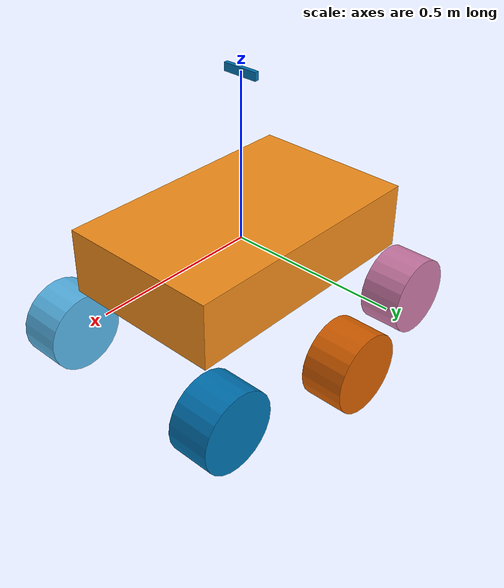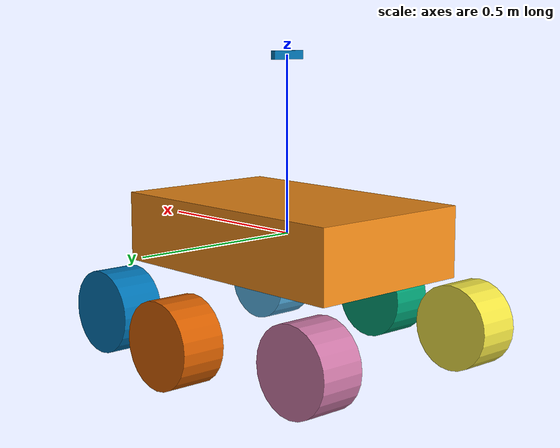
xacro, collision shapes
<?xml version="1.0"?>
<robot xmlns:xacro="http://www.ros.org/wiki/xacro" name="rover">

  <xacro:include filename="$(find protobot_description)/urdf/macro.xacro"/>

  <link name="base_link">
    <visual>
      <geometry>
        <box size="${body_length} ${body_width} ${body_height}"/>
      </geometry>
    </visual>
    <collision>
      <geometry>
        <box size="${body_length} ${body_width} ${body_height}"/>
      </geometry>
    </collision>
    <inertial>
      <origin xyz="0 0 0" rpy="0 0 0"/>
      <mass value="${body_mass}"/>
      <xacro:box_inertia m="${body_mass}" x="${body_length}" y="${body_width}" z="${body_height}"/>
    </inertial>
  </link>

  <link name="right_front_wheel"><xacro:wheel_visual_collision_inertia/></link>

  <joint name="right_front_wheel_pivot" type="continuous">
    <hardwareInterface>hardware_interface/VelocityJointInterface</hardwareInterface>
    <parent link="base_link"/>
    <child link="right_front_wheel"/>
    <origin xyz="${front_wheel_forward} -${front_wheel_out} -${wheel_height}"/>
    <axis xyz="0 1 0" />
  </joint>

  <link name="right_mid_wheel"><xacro:wheel_visual_collision_inertia/></link>

  <joint name="right_mid_wheel_pivot" type="continuous">
    <hardwareInterface>hardware_interface/VelocityJointInterface</hardwareInterface>
    <parent link="base_link"/>
    <child link="right_mid_wheel"/>
    <origin xyz="0 -${mid_wheel_out} -${wheel_height}"/>
    <axis xyz="0 1 0" />
  </joint>

  <link name="right_back_wheel"><xacro:wheel_visual_collision_inertia/></link>

  <joint name="right_back_wheel_pivot" type="continuous">
    <hardwareInterface>hardware_interface/VelocityJointInterface</hardwareInterface>
    <parent link="base_link"/>
    <child link="right_back_wheel"/>
    <origin xyz="-${rear_wheel_back} -${rear_wheel_out} -${wheel_height}"/>
    <axis xyz="0 1 0" />
  </joint>

  <link name="left_front_wheel"><xacro:wheel_visual_collision_inertia/></link>

  <joint name="left_front_wheel_pivot" type="continuous">
    <parent link="base_link"/>
    <child link="left_front_wheel"/>
    <origin xyz="${front_wheel_forward} ${front_wheel_out} -${wheel_height}"/>
    <axis xyz="0 1 0" />
  </joint>

  <link name="left_mid_wheel"><xacro:wheel_visual_collision_inertia/></link>

  <joint name="left_mid_wheel_pivot" type="continuous">
    <hardwareInterface>hardware_interface/VelocityJointInterface</hardwareInterface>
    <parent link="base_link"/>
    <child link="left_mid_wheel"/>
    <origin xyz="0 ${mid_wheel_out} -${wheel_height}"/>
    <axis xyz="0 1 0" />
  </joint>

  <link name="left_back_wheel"><xacro:wheel_visual_collision_inertia/></link>

  <joint name="left_back_wheel_pivot" type="continuous">
    <hardwareInterface>hardware_interface/VelocityJointInterface</hardwareInterface>
    <parent link="base_link"/>
    <child link="left_back_wheel"/>
    <origin xyz="-${rear_wheel_back} ${rear_wheel_out} -${wheel_height}"/>
    <axis xyz="0 1 0" />
  </joint>

  <gazebo reference="base_link">
    <material>Gazebo/Orange</material>
  </gazebo>

  <link name="gps_imu_link">
  </link>

  <link name="cam_link">
</link>

  <link name="cam_link_optical">
</link>

  <link name="gps"></link>

  <joint name="cam_optical_joint" type="fixed">
    <parent link="cam_link"/>
    <child link="cam_link_optical"/>
    <origin xyz="0 0 0" rpy="3.14 3.14 1.571"/>
</joint>

  <joint name="cam_joint" type="fixed">
    <parent link="base_link"/>
    <child link="cam_link"/>
    <origin xyz="0 0 0" rpy="0 0 0"/>
</joint>

  <joint name="ublox_gps_joint" type="fixed">
    <parent link="base_link"/>
    <child link="gps"/>
    <origin xyz="0 0 0.5"/>
</joint>

  <joint name="gps_imu_joint" type="fixed">
      <parent link="base_link"/>
      <child link="gps_imu_link"/>
      <origin xyz="0 0 0.5"/>
  </joint>

  <xacro:include filename="$(find realsense_ros_gazebo)/xacro/tracker.xacro"/>

  <xacro:realsense_T265 sensor_name="camera" parent_link="cam_link_optical" rate="30.0">
    <origin rpy="0 0 1.57" xyz="0 0 0.5"/>
  </xacro:realsense_T265>

  <xacro:include filename="$(find realsense_ros_gazebo)/xacro/depthcam.xacro"/>

  <xacro:realsense_d435 sensor_name="d435" parent_link="cam_link_optical" rate="10">
    <origin rpy="0 0 1.57" xyz="0 0 0.5"/>
  </xacro:realsense_d435>

  <gazebo>
    <plugin filename="libgazebo_ros_control.so" name="gazebo_ros_control">
    </plugin>
  </gazebo>

  <gazebo>
    <plugin name="gps_controller" filename="libhector_gazebo_ros_gps.so">
        <updateRate>30.0</updateRate>
        <bodyName>gps_imu_link</bodyName>
        <topicName>gps/fix</topicName>
        <frameId>gps_imu_link</frameId>
        <gaussianNoise>0</gaussianNoise>
    </plugin>
  </gazebo>

  <gazebo>
     <plugin name="imu_plugin" filename="libgazebo_ros_imu.so">
      <alwaysOn>true</alwaysOn>
      <bodyName>gps_imu_link</bodyName>
      <topicName>imu/data</topicName>
      <serviceName>imu_service</serviceName>
      <gaussianNoise>0</gaussianNoise>
      <updateRate>20.0</updateRate>
    </plugin>
  </gazebo>

  <gazebo reference="camera_link">
     <sensor type="depth" name="depth_camera">
      <plugin name="camera_link_controller" filename="libgazebo_ros_openni_kinect.so">
          <baseline>0.2</baseline>
          <alwaysOn>true</alwaysOn>
          <updateRate>1.0</updateRate>
          <cameraName>camera</cameraName>
          <imageTopicName>color/image_raw</imageTopicName>
      <cameraInfoTopicName>color/camera_info</cameraInfoTopicName>
      <depthImageTopicName>depth/image_raw</depthImageTopicName>
      <depthImageInfoTopicName>depth/camera_info</depthImageInfoTopicName>
      <pointCloudTopicName>depth/pointcloud</pointCloudTopicName>
          <frameName>cam_link_optical</frameName>
          <pointCloudCutoff>0.1</pointCloudCutoff>
      <pointCloudCutoffMax>5</pointCloudCutoffMax>
          <distortionK1>0.00000001</distortionK1>
          <distortionK2>0.00000001</distortionK2>
          <distortionK3>0.00000001</distortionK3>
          <distortionT1>0.00000001</distortionT1>
          <distortionT2>0.00000001</distortionT2>
          <CxPrime>0</CxPrime>
          <Cx>0</Cx>
          <Cy>0</Cy>
          <focalLength>0</focalLength>
          <hackBaseline>0</hackBaseline>
      </plugin>
     </sensor>
  </gazebo>

  <transmission name="left_front_trans">
    <type>transmission_interface/SimpleTransmission</type>
    <actuator name="motor1">
      <mechanicalReduction>1</mechanicalReduction>
    </actuator>
    <joint name="left_front_wheel_pivot">
      <hardwareInterface>hardware_interface/VelocityJointInterface</hardwareInterface>
    </joint>
  </transmission>

  <transmission name="left_middle_trans">
    <type>transmission_interface/SimpleTransmission</type>
    <actuator name="motor1">
      <mechanicalReduction>1</mechanicalReduction>
    </actuator>
    <joint name="left_mid_wheel_pivot">
      <hardwareInterface>hardware_interface/VelocityJointInterface</hardwareInterface>
    </joint>
  </transmission>

  <transmission name="left_back_trans">
    <type>transmission_interface/SimpleTransmission</type>
    <actuator name="motor1">
      <mechanicalReduction>1</mechanicalReduction>
    </actuator>
    <joint name="left_back_wheel_pivot">
      <hardwareInterface>hardware_interface/VelocityJointInterface</hardwareInterface>
    </joint>
  </transmission>

  <transmission name="right_front_trans">
    <type>transmission_interface/SimpleTransmission</type>
    <actuator name="motor1">
      <mechanicalReduction>1</mechanicalReduction>
    </actuator>
    <joint name="right_front_wheel_pivot">
      <hardwareInterface>hardware_interface/VelocityJointInterface</hardwareInterface>
    </joint>
  </transmission>

  <transmission name="right_middle_trans">
    <type>transmission_interface/SimpleTransmission</type>
    <actuator name="motor1">
      <mechanicalReduction>1</mechanicalReduction>
    </actuator>
    <joint name="right_mid_wheel_pivot">
      <hardwareInterface>hardware_interface/VelocityJointInterface</hardwareInterface>
    </joint>
  </transmission>

  <transmission name="right_back_trans">
    <type>transmission_interface/SimpleTransmission</type>
    <actuator name="motor1">
      <mechanicalReduction>1</mechanicalReduction>
    </actuator>
    <joint name="right_back_wheel_pivot">
      <hardwareInterface>hardware_interface/VelocityJointInterface</hardwareInterface>
    </joint>
  </transmission>

</robot>

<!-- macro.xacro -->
<robot xmlns:xacro="http://www.ros.org/wiki/xacro" name="macros">

<xacro:property name="body_length" value="0.8"/>
<xacro:property name="body_width" value="0.5"/>
<xacro:property name="body_height" value="0.2"/>
<xacro:property name="body_mass" value="55"/>

<xacro:property name="wheel_radius" value="0.12"/>
<xacro:property name="wheel_width" value="0.128"/>
<xacro:property name="wheel_height" value="0.24"/>
<xacro:property name="wheel_mass" value="0.7"/>

<xacro:property name="front_wheel_forward" value="0.4"/>
<xacro:property name="front_wheel_out" value="0.3"/>
<xacro:property name="mid_wheel_out" value="0.4"/>
<xacro:property name="rear_wheel_back" value="0.4"/>
<xacro:property name="rear_wheel_out" value="0.3"/>

<xacro:macro name="box_inertia" params="m x y z">
  <inertia  ixx="${m*(y*y+z*z)/12}" ixy = "0" ixz = "0"
            iyy="${m*(x*x+z*z)/12}" iyz = "0"
            izz="${m*(x*x+z*z)/12}"/>
</xacro:macro>

<xacro:macro name="cylinder_inertia" params="m r h">
  <inertia    ixx="${m*(3*r*r+h*h)/12}" ixy = "0" ixz = "0"
              iyy="${m*(3*r*r+h*h)/12}" iyz = "0"
              izz="${m*r*r/2}"/>
</xacro:macro>

<xacro:macro name="wheel_visual_collision_inertia">
  <visual>
    <geometry>
      <cylinder length="${wheel_width}" radius="${wheel_radius}"/>
    </geometry>
    <origin rpy="${pi/2} 0 0"/>
  </visual>
  <collision>
    <geometry>
      <cylinder length="${wheel_width}" radius="${wheel_radius}"/>
    </geometry>
    <origin rpy="${pi/2} 0 0"/>
  </collision>
  <inertial>
    <mass value="${wheel_mass}"/>
    <xacro:cylinder_inertia m="${wheel_mass}" r="${wheel_radius}" h="${wheel_height}"/>
  </inertial>
</xacro:macro>

</robot>

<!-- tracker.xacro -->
<robot xmlns:xacro="http://www.ros.org/wiki/xacro">

  <xacro:macro name="T265_fisheye" params="sensor_name reference_frame topic rate">
    <gazebo reference="${reference_frame}">
      <sensor name="camera" type="wideanglecamera">
        <camera>
          <horizontal_fov>6.283</horizontal_fov>
          <image>
            <width>800</width>
            <height>848</height>
          </image>
          <clip>
            <near>0.1</near>
            <far>100</far>
          </clip>
          <lens>
            <type>custom</type>
            <custom_function>
              <c1>1.05</c1>
              <c2>4</c2>
              <f>1.0</f>
              <fun>tan</fun>
            </custom_function>
            <scale_to_hfov>true</scale_to_hfov>
            <cutoff_angle>3.1415</cutoff_angle>
            <env_texture_size>512</env_texture_size>
          </lens>
          <always_on>true</always_on>
          <update_rate>30</update_rate>
        </camera>
        <plugin name="camera_controller" filename="libgazebo_ros_camera.so">
          <alwaysOn>true</alwaysOn>
          <updateRate>${rate}</updateRate>
          <cameraName>${sensor_name}/${topic}</cameraName>
          <imageTopicName>image_raw</imageTopicName>
          <cameraInfoTopicName>camera_info</cameraInfoTopicName>
          <frameName>${reference_frame}</frameName>
          <hackBaseline>0.07</hackBaseline>
          <distortionK1>-0.007419134024530649</distortionK1>
          <distortionK2>0.041209351271390915</distortionK2>
          <distortionK3>-0.03811917081475258</distortionK3>
          <distortionT1>0.006366158835589886</distortionT1>
          <distortionT2>0.0</distortionT2>
          <CxPrime>416.00531005859375</CxPrime>
          <Cx>16.00531005859375</Cx>
          <Cy>403.38909912109375</Cy>
        </plugin>
      </sensor>
    </gazebo>
  </xacro:macro>

  <!-- INTEL REALSENSE T265 -->

  <xacro:macro name="realsense_T265" params="sensor_name parent_link rate *origin">

    <joint name="${sensor_name}_odom_frame_joint" type="fixed">
        <parent link="${parent_link}"/>
        <child link="${sensor_name}_odom_frame"/>
        <xacro:insert_block name="origin"/>
    </joint>

    <joint name="${sensor_name}_pose_frame_joint" type="fixed">
        <parent link="${sensor_name}_odom_frame"/>
        <child link="${sensor_name}_pose_frame"/>
        <origin rpy="0 0 0" xyz="0 0 0"/> <!-- check on real hw -->
    </joint>
    <link name="${sensor_name}_odom_frame"/>

    <link name="${sensor_name}_pose_frame">
        <visual>
            <origin rpy="1.57 0 1.57" xyz="0 0 0"/>
            <geometry>
                <mesh filename="package://realsense_ros_gazebo/meshes/realsense_t265.stl" scale="0.001 0.001 0.001"/>
            </geometry>
        </visual>
        <collision>
            <geometry>
                <box size="0.013 0.108 0.024"/>
            </geometry>
        </collision>
        <inertial>
            <mass value="0.055"/>
            <origin rpy="0 0 0" xyz="0 0 0"/>
            <inertia ixx="9.108e-05"
                     ixy="0"
                     ixz="0"
                     iyy="2.51e-06"
                     iyz="0"
                     izz="8.931e-05"/>
        </inertial>
    </link>

    <joint name="${sensor_name}_joint" type="fixed">
        <parent link="${sensor_name}_pose_frame"/>
        <child link="${sensor_name}_link"/>
        <origin rpy="0 0 0" xyz="0 0 0"/> <!-- check on real hw -->
    </joint>
    <link name="${sensor_name}_link"/>

    <joint name="${sensor_name}_fisheye1_joint" type="fixed">
        <parent link="${sensor_name}_link"/>
        <child link="${sensor_name}_fisheye1_frame"/>
        <origin rpy="0 0 0" xyz="0 0.042 0"/>
    </joint>
    <link name="${sensor_name}_fisheye1_frame"/>

    <joint name="${sensor_name}_fisheye1_optical_joint" type="fixed">
        <parent link="${sensor_name}_fisheye1_frame"/>
        <child link="${sensor_name}_fisheye1_optical_frame"/>
        <origin rpy="0 0 0" xyz="0.01 0 0"/>
    </joint>
    <link name="${sensor_name}_fisheye1_optical_frame"/>
    <xacro:T265_fisheye
      sensor_name="${sensor_name}"
      reference_frame="${sensor_name}_fisheye1_optical_frame"
      topic="fisheye1"
      rate="${rate}">
    </xacro:T265_fisheye>

    <joint name="${sensor_name}_fisheye2_joint" type="fixed">
        <parent link="${sensor_name}_link"/>
        <child link="${sensor_name}_fisheye2_frame"/>
        <origin rpy="0 0 0" xyz="0 -0.022 0"/>
    </joint>
    <link name="${sensor_name}_fisheye2_frame"/>

    <joint name="${sensor_name}_fisheye2_optical_joint" type="fixed">
        <parent link="${sensor_name}_fisheye2_frame"/>
        <child link="${sensor_name}_fisheye2_optical_frame"/>
        <origin rpy="0 0 0" xyz="0.01 0 0"/>
    </joint>
    <link name="${sensor_name}_fisheye2_optical_frame"/>
    <xacro:T265_fisheye
      sensor_name="${sensor_name}"
      reference_frame="${sensor_name}_fisheye2_optical_frame"
      topic="fisheye2"
      rate="${rate}">
    </xacro:T265_fisheye>

    <joint name="${sensor_name}_gyro_joint" type="fixed">
        <parent link="${sensor_name}_link"/>
        <child link="${sensor_name}_gyro_frame"/>
        <origin rpy="0 0 0" xyz="0 0 0"/> <!-- check on real hw -->
    </joint>
    <link name="${sensor_name}_gyro_frame"/>

    <gazebo reference="${sensor_name}_gyro_frame">
        <gravity>true</gravity>
        <sensor name="${sensor_name}_imu" type="imu">
            <always_on>true</always_on>
            <update_rate>${rate}</update_rate>
            <visualize>false</visualize>
            <plugin filename="libgazebo_ros_imu_sensor.so" name="imu_plugin">
                <topicName>${sensor_name}/gyro/sample</topicName>
                <bodyName>${sensor_name}_pose_frame</bodyName>
                <updateRateHZ>${rate}</updateRateHZ>
                <gaussianNoise>0.000001</gaussianNoise>
                <xyzOffset>0 0 0</xyzOffset>
                <rpyOffset>0 0 0</rpyOffset>
                <frameName>${sensor_name}_link</frameName>
            </plugin>
        </sensor>
    </gazebo>

    <joint name="${sensor_name}_accel_joint" type="fixed">
        <parent link="${sensor_name}_link"/>
        <child link="${sensor_name}_accel_frame"/>
        <origin rpy="0 0 0" xyz="0 0 0"/> <!-- check on real hw -->
    </joint>
    <link name="${sensor_name}_accel_frame"/> <!-- dummy -->

    <gazebo> <!-- odometry -->
        <plugin name="p3d_base_controller" filename="libgazebo_ros_p3d.so">
            <alwaysOn>true</alwaysOn>
            <updateRate>${rate}</updateRate>
            <bodyName>${sensor_name}_odom_frame</bodyName>
            <topicName>${sensor_name}/odom/sample</topicName>
            <gaussianNoise>0.001</gaussianNoise>
	    <frameName>world</frameName>
            <xyzOffsets>0 0 0</xyzOffsets>
            <rpyOffsets>0 0 0</rpyOffsets>
        </plugin>
    </gazebo>

  </xacro:macro>

</robot>

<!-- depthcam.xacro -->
<robot xmlns:xacro="http://www.ros.org/wiki/xacro">

  <xacro:include filename="$(find realsense_ros_gazebo)/xacro/inertia_calc.xacro"/>

  <!-- INTEL REALSENSE D435 -->

  <xacro:macro name="realsense_d435" params="sensor_name parent_link *origin rate">

    <xacro:property name="d435_cam_depth_to_left_ir_offset" value="0.0"/>
    <xacro:property name="d435_cam_depth_to_right_ir_offset" value="-0.050"/>
    <xacro:property name="d435_cam_depth_to_color_offset" value="0.015"/>
    <xacro:property name="d435_cam_width" value="0.090"/>
    <xacro:property name="d435_cam_height" value="0.025"/>
    <xacro:property name="d435_cam_depth" value="0.02505"/>
    <xacro:property name="d435_cam_mass" value="0.564"/>
    <xacro:property name="d435_cam_mount_from_center_offset" value="0.0149"/>
    <xacro:property name="d435_cam_depth_px" value="${d435_cam_mount_from_center_offset}"/>
    <xacro:property name="d435_cam_depth_py" value="0.0175"/>
    <xacro:property name="d435_cam_depth_pz" value="${d435_cam_height/2}"/>

    <!-- camera body, with origin at bottom screw mount -->
    <joint name="${sensor_name}_joint" type="fixed">
      <xacro:insert_block name="origin" />
      <parent link="${parent_link}"/>
      <child link="${sensor_name}_bottom_screw_frame" />
    </joint>
    <link name="${sensor_name}_bottom_screw_frame"/>

    <joint name="${sensor_name}_link_joint" type="fixed">
      <origin xyz="0 ${d435_cam_depth_py} ${d435_cam_depth_pz}" rpy="0 0 0"/>
      <parent link="${sensor_name}_bottom_screw_frame"/>
      <child link="${sensor_name}_link" />
    </joint>

    <link name="${sensor_name}_link">
      <visual>
        <origin xyz="${d435_cam_mount_from_center_offset} ${-d435_cam_depth_py} 0" rpy="${pi/2} 0 ${pi/2}"/>
        <geometry>
          <mesh filename="package://realsense_ros_gazebo/meshes/realsense_d435.stl" />
        </geometry>
      </visual>
      <inertial>
        <mass value="${d435_cam_mass}" />
        <origin xyz="0 ${-d435_cam_depth_py} 0" rpy="0 0 0"/>
        <xacro:box_inertia m="${d435_cam_mass}" x="${d435_cam_depth}" y="${d435_cam_width}" z="${d435_cam_height}"/>
      </inertial>
    </link>

    <!-- camera depth joints and links -->
    <joint name="${sensor_name}_depth_joint" type="fixed">
      <origin xyz="0 0 0" rpy="0 0 0"/>
      <parent link="${sensor_name}_link"/>
      <child link="${sensor_name}_depth_frame" />
    </joint>
    <link name="${sensor_name}_depth_frame"/>

    <joint name="${sensor_name}_depth_optical_joint" type="fixed">
      <origin xyz="0 0 0" rpy="${-pi/2} 0 ${-pi/2}" />
      <parent link="${sensor_name}_depth_frame" />
      <child link="${sensor_name}_depth_optical_frame" />
    </joint>
    <link name="${sensor_name}_depth_optical_frame"/>

    <!-- camera left IR joints and links -->
    <joint name="${sensor_name}_left_ir_joint" type="fixed">
      <origin xyz="0 ${d435_cam_depth_to_left_ir_offset} 0" rpy="0 0 0" />
      <parent link="${sensor_name}_depth_frame" />
      <child link="${sensor_name}_left_ir_frame" />
    </joint>
    <link name="${sensor_name}_left_ir_frame"/>

    <joint name="${sensor_name}_left_ir_optical_joint" type="fixed">
      <origin xyz="0 0 0" rpy="${-pi/2} 0 ${-pi/2}" />
      <parent link="${sensor_name}_left_ir_frame" />
      <child link="${sensor_name}_left_ir_optical_frame" />
    </joint>
    <link name="${sensor_name}_left_ir_optical_frame"/>

    <!-- camera right IR joints and links -->
    <joint name="${sensor_name}_right_ir_joint" type="fixed">
      <origin xyz="0 ${d435_cam_depth_to_right_ir_offset} 0" rpy="0 0 0" />
      <parent link="${sensor_name}_depth_frame" />
      <child link="${sensor_name}_right_ir_frame" />
    </joint>
    <link name="${sensor_name}_right_ir_frame"/>

    <joint name="${sensor_name}_right_ir_optical_joint" type="fixed">
      <origin xyz="0 0 0" rpy="${-pi/2} 0 ${-pi/2}" />
      <parent link="${sensor_name}_right_ir_frame" />
      <child link="${sensor_name}_right_ir_optical_frame" />
    </joint>
    <link name="${sensor_name}_right_ir_optical_frame"/>

    <!-- camera color joints and links -->
    <joint name="${sensor_name}_color_joint" type="fixed">
      <origin xyz="0 ${d435_cam_depth_to_color_offset} 0" rpy="0 0 0" />
      <parent link="${sensor_name}_depth_frame" />
      <child link="${sensor_name}_color_frame" />
    </joint>
    <link name="${sensor_name}_color_frame"/>

    <joint name="${sensor_name}_color_optical_joint" type="fixed">
      <origin xyz="0 0 0" rpy="${-pi/2} 0 ${-pi/2}" />
      <parent link="${sensor_name}_color_frame" />
      <child link="${sensor_name}_color_optical_frame" />
    </joint>
    <link name="${sensor_name}_color_optical_frame"/>

    <!-- gazebo plugin -->

    <xacro:property name="deg_to_rad" value="0.01745329251994329577" />

    <gazebo reference="${sensor_name}_link">
      <self_collide>0</self_collide>
      <enable_wind>0</enable_wind>
      <kinematic>0</kinematic>
      <gravity>1</gravity>
      <mu2>1</mu2>
      <fdir1>0 0 0</fdir1>
      <kp>1e+13</kp>
      <kd>1</kd>

      <sensor name="${sensor_name}_color" type="camera">
        <camera name="${sensor_name}">
          <horizontal_fov>${69.4*deg_to_rad}</horizontal_fov>
          <image>
            <width>640</width>
            <height>480</height>
            <format>RGB_INT8</format>
          </image>
          <clip>
            <near>0.1</near>
            <far>100</far>
          </clip>
          <noise>
            <type>gaussian</type>
            <mean>0.0</mean>
            <stddev>0.007</stddev>
          </noise>
        </camera>
        <always_on>1</always_on>
        <update_rate>15</update_rate>
        <visualize>0</visualize>
      </sensor>
      <sensor name="${sensor_name}_ired1" type="camera">
        <camera name="${sensor_name}">
          <horizontal_fov>${85.2*deg_to_rad}</horizontal_fov>
          <image>
            <width>640</width>
            <height>480</height>
            <format>L_INT8</format>
          </image>
          <clip>
            <near>0.1</near>
            <far>100</far>
          </clip>
          <noise>
            <type>gaussian</type>
            <mean>0.0</mean>
            <stddev>0.05</stddev>
          </noise>
        </camera>
        <always_on>1</always_on>
        <update_rate>${rate}</update_rate>
        <visualize>0</visualize>
      </sensor>
      <sensor name="${sensor_name}_ired2" type="camera">
        <camera name="${sensor_name}">
          <horizontal_fov>${85.2*deg_to_rad}</horizontal_fov>
          <image>
            <width>640</width>
            <height>480</height>
            <format>L_INT8</format>
          </image>
          <clip>
            <near>0.1</near>
            <far>100</far>
          </clip>
          <noise>
            <type>gaussian</type>
            <mean>0.0</mean>
            <stddev>0.05</stddev>
          </noise>
        </camera>
        <always_on>1</always_on>
        <update_rate>${rate}</update_rate>
        <visualize>0</visualize>
      </sensor>
      <sensor name="${sensor_name}_depth" type="depth">
        <camera name="${sensor_name}">
          <horizontal_fov>${85.2*deg_to_rad}</horizontal_fov>
          <image>
            <width>640</width>
            <height>480</height>
          </image>
          <clip>
            <near>0.1</near>
            <far>100</far>
          </clip>
          <noise>
            <type>gaussian</type>
            <mean>0.0</mean>
            <stddev>0.100</stddev>
          </noise>
        </camera>
        <always_on>1</always_on>
        <update_rate>${rate}</update_rate>
        <visualize>0</visualize>
      </sensor>
    </gazebo>

    <gazebo>
      <plugin name="${sensor_name}" filename="librealsense_gazebo_plugin.so">
        <prefix>${sensor_name}_</prefix>
        <depthUpdateRate>${rate}</depthUpdateRate>
        <colorUpdateRate>15</colorUpdateRate>
        <infraredUpdateRate>${rate}</infraredUpdateRate>
        <depthTopicName>depth/image_rect_raw</depthTopicName>
        <depthCameraInfoTopicName>depth/camera_info</depthCameraInfoTopicName>
        <colorTopicName>color/image_raw</colorTopicName>
        <colorCameraInfoTopicName>color/camera_info</colorCameraInfoTopicName>
        <infrared1TopicName>infra1/image_rect_raw</infrared1TopicName>
        <infrared1CameraInfoTopicName>infra1/camera_info</infrared1CameraInfoTopicName>
        <infrared2TopicName>infra2/image_rect_raw</infrared2TopicName>
        <infrared2CameraInfoTopicName>infra2/camera_info</infrared2CameraInfoTopicName>
        <colorOpticalframeName>${sensor_name}_color_optical_frame</colorOpticalframeName>
        <depthOpticalframeName>${sensor_name}_depth_optical_frame</depthOpticalframeName>
        <infrared1OpticalframeName>${sensor_name}_infra1_optical_frame</infrared1OpticalframeName>
        <infrared2OpticalframeName>${sensor_name}_infra2_optical_frame</infrared2OpticalframeName>
        <rangeMinDepth>0.2</rangeMinDepth>
        <rangeMaxDepth>10.0</rangeMaxDepth>
        <pointCloud>true</pointCloud>
        <pointCloudTopicName>depth/color/points</pointCloudTopicName>
        <pointCloudCutoff>0.25</pointCloudCutoff>
        <pointCloudCutoffMax>9.0</pointCloudCutoffMax>
      </plugin>
    </gazebo>

  </xacro:macro>

  <!-- INTEL REALSENSE R200 -->

  <xacro:macro name="realsense_R200" params="sensor_name parent_link rate *origin">

      <link name="${sensor_name}_R200_camera">
          <visual>
              <origin rpy="0 0 0" xyz="0 0 0"/>
              <geometry>
                  <mesh filename="package://realsense_ros_gazebo/meshes/realsense_r200/meshes/realsense.dae"/>
              </geometry>
          </visual>
          <inertial>
              <mass value="0.0615752"/>
              <origin rpy="0 0 0" xyz="0 0 0"/>
              <inertia ixx="9.108e-05"
                       ixy="0"
                       ixz="0"
                       iyy="2.51e-06"
                       iyz="0"
                       izz="8.931e-05"/>
          </inertial>
      </link>

      <joint name="${sensor_name}_joint" type="fixed">
          <parent link="${parent_link}"/>
          <child link="${sensor_name}_R200_camera"/>
          <xacro:insert_block name="origin"/>
      </joint>

      <link name="${sensor_name}_color" />
      <link name="${sensor_name}_depth" />
      <link name="${sensor_name}_ired1" />
      <link name="${sensor_name}_ired2" />

      <joint name="${sensor_name}_color_joint" type="fixed">
          <parent link="${sensor_name}_R200_camera" />
          <child link="${sensor_name}_color" />
          <origin xyz="0 -0.046 0.004" rpy="${pi/2} ${pi} ${pi/2}"/>
      </joint>

      <joint name="${sensor_name}_depth_joint" type="fixed">
          <parent link="${sensor_name}_R200_camera" />
          <child link="${sensor_name}_depth" />
          <origin xyz="0 -0.03 0.004" rpy="0 0 0"/>
      </joint>

      <joint name="${sensor_name}_ired1_joint" type="fixed">
          <parent link="${sensor_name}_R200_camera" />
          <child link="${sensor_name}_ired1" />
          <origin xyz="0 -0.06 0.004" rpy="0 0 0"/>
      </joint>

      <joint name="${sensor_name}_ired2_joint" type="fixed">
          <parent link="${sensor_name}_R200_camera" />
          <child link="${sensor_name}_ired2" />
          <origin xyz="0 0.01 0.004" rpy="0 0 0"/>
      </joint>

      <gazebo reference="${sensor_name}_R200_camera">

          <self_collide>0</self_collide>
          <enable_wind>0</enable_wind>
          <kinematic>0</kinematic>
          <gravity>1</gravity>
          <mu>1</mu>
          <mu2>1</mu2>
          <fdir1>0 0 0</fdir1>
          <slip1>0</slip1>
          <slip2>0</slip2>
          <kp>1e+13</kp>
          <kd>1</kd>
          <max_vel>0.01</max_vel>
          <min_depth>0</min_depth>

          <sensor name="${sensor_name}_color" type="camera">
              <pose frame="">0 -0.046 0.004 0 0 0</pose>
              <camera name="${sensor_name}_R200_camera">
              <horizontal_fov>1.047</horizontal_fov>
              <image>
                  <width>640</width>
                  <height>480</height>
                  <format>RGB_INT8</format>
              </image>
              <clip>
                  <near>0.1</near>
                  <far>100</far>
              </clip>
              <noise>
                  <type>gaussian</type>
                  <mean>0.0</mean>
                  <stddev>0.007</stddev>
              </noise>
              </camera>
              <always_on>1</always_on>
              <update_rate>${rate}</update_rate>
              <visualize>0</visualize>
          </sensor>
          <sensor name="${sensor_name}_ired1" type="camera">
              <pose frame="">0 -0.06 0.004 0 0 0</pose>
              <camera name="${sensor_name}_R200_camera">
              <horizontal_fov>1.047</horizontal_fov>
              <image>
                  <width>640</width>
                  <height>480</height>
                  <format>L_INT8</format>
              </image>
              <clip>
                  <near>0.1</near>
                  <far>100</far>
              </clip>
              <noise>
                  <type>gaussian</type>
                  <mean>0.0</mean>
                  <stddev>0.05</stddev>
              </noise>
              </camera>
              <always_on>1</always_on>
              <update_rate>${rate}</update_rate>
              <visualize>0</visualize>
          </sensor>
          <sensor name="${sensor_name}_ired2" type="camera">
              <pose frame="">0 0.01 0.004 0 0 0</pose>
              <camera name="${sensor_name}_R200_camera">
              <horizontal_fov>1.047</horizontal_fov>
              <image>
                  <width>640</width>
                  <height>480</height>
                  <format>L_INT8</format>
              </image>
              <clip>
                  <near>0.1</near>
                  <far>100</far>
              </clip>
              <noise>
                  <type>gaussian</type>
                  <mean>0.0</mean>
                  <stddev>0.05</stddev>
              </noise>
              </camera>
              <always_on>1</always_on>
              <update_rate>${rate}</update_rate>
              <visualize>0</visualize>
          </sensor>
          <sensor name="${sensor_name}_depth" type="depth">
              <pose frame="">0 -0.03 0.004 0 0 0</pose>
              <camera name="${sensor_name}_R200_camera">
              <horizontal_fov>1.047</horizontal_fov>
              <image>
                      <width>640</width>
                      <height>480</height>
              </image>
              <clip>
                      <near>0.1</near>
                      <far>100</far>
              </clip>
              <noise>
                      <type>gaussian</type>
                      <mean>0.0</mean>
                      <stddev>0.100</stddev>
              </noise>
              </camera>
              <always_on>1</always_on>
              <update_rate>60</update_rate>
              <visualize>0</visualize>
          </sensor>
      </gazebo>

      <gazebo>
        <plugin name="${sensor_name}" filename="librealsense_gazebo_plugin.so">
          <prefix>${sensor_name}_</prefix>
          <depthUpdateRate>${rate}</depthUpdateRate>
          <colorUpdateRate>${rate}</colorUpdateRate>
          <infraredUpdateRate>${rate}</infraredUpdateRate>
          <depthTopicName>depth/image_rect_raw</depthTopicName>
          <depthCameraInfoTopicName>depth/camera_info</depthCameraInfoTopicName>
          <colorTopicName>color/image_raw</colorTopicName>
          <colorCameraInfoTopicName>color/camera_info</colorCameraInfoTopicName>
          <infrared1TopicName>infra1/image_rect_raw</infrared1TopicName>
          <infrared1CameraInfoTopicName>infra1/camera_info</infrared1CameraInfoTopicName>
          <infrared2TopicName>infra2/image_rect_raw</infrared2TopicName>
          <infrared2CameraInfoTopicName>infra2/camera_info</infrared2CameraInfoTopicName>
          <colorOpticalframeName>${sensor_name}_color_optical_frame</colorOpticalframeName>
          <depthOpticalframeName>${sensor_name}_depth_optical_frame</depthOpticalframeName>
          <infrared1OpticalframeName>${sensor_name}_infra1_optical_frame</infrared1OpticalframeName>
          <infrared2OpticalframeName>${sensor_name}_infra2_optical_frame</infrared2OpticalframeName>
          <rangeMinDepth>0.2</rangeMinDepth>
          <rangeMaxDepth>10.0</rangeMaxDepth>
          <pointCloud>true</pointCloud>
          <pointCloudTopicName>depth/color/points</pointCloudTopicName>
          <pointCloudCutoff>0.25</pointCloudCutoff>
          <pointCloudCutoffMax>9.0</pointCloudCutoffMax>
        </plugin>
      </gazebo>

  </xacro:macro>

</robot>
